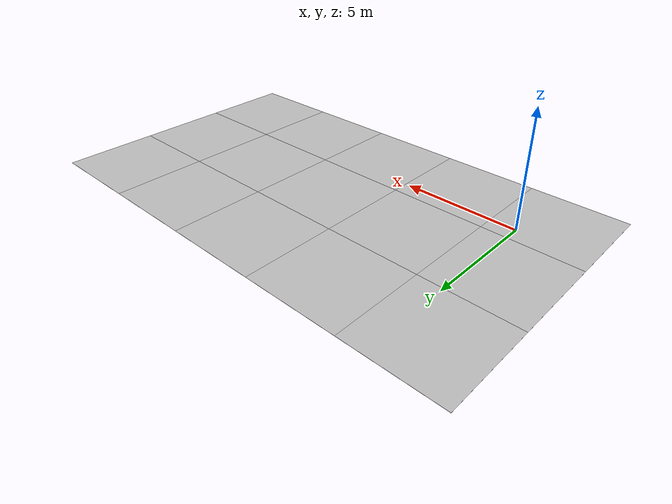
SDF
<sdf version='1.6'><world name='default'>
    <light name='sun_light' type='directional'>
      <pose frame=''>0 0 10 0 -0 0</pose>
      <diffuse>0.5 0.5 0.5 1</diffuse>
      <specular>0.1 0.1 0.1 1</specular>
      <direction>0.1 0.1 -0.9</direction>
      <attenuation>
        <range>20</range>
        <constant>0.5</constant>
        <linear>0.01</linear>
        <quadratic>0.001</quadratic>
      </attenuation>
      <cast_shadows>1</cast_shadows>
    </light>

    <model name='Tile/0-0'>
      <static>1</static>
      <link name='link'>
        <collision name='collision'>
          <geometry>
            <plane>
              <normal>0 0 1</normal>
              <size>4.096 4.096</size>
            </plane>
          </geometry>
          <surface>
            <friction>
              <ode>
                <mu>100</mu>
                <mu2>50</mu2>
              </ode>
              <torsional>
                <ode/>
              </torsional>
            </friction>
            <contact>
              <ode/>
            </contact>
            <bounce/>
          </surface>
          <max_contacts>10</max_contacts>
        </collision>
        <visual name='visual'>
          <cast_shadows>0</cast_shadows>
          <geometry>
            <plane>
              <normal>0 0 1</normal>
              <size>4.096 4.096</size>
            </plane>
          </geometry>
          <material>
            <script>
              <uri>file://materials/scripts</uri>
              <uri>file://materials/textures</uri>
              <name>Tile/2d6d550247164405bd7f7721bde8c66eb1b70c9c122a16d1426408409930bc02</name>
            </script>
          </material>
        </visual>
        <self_collide>0</self_collide>
        <enable_wind>0</enable_wind>
        <kinematic>0</kinematic>
      </link>
      <pose frame=''>-0.952 -1.3519999999999999 0 0 -0 0</pose>
    </model>

    <model name='Tile/0-1'>
      <static>1</static>
      <link name='link'>
        <collision name='collision'>
          <geometry>
            <plane>
              <normal>0 0 1</normal>
              <size>4.096 4.096</size>
            </plane>
          </geometry>
          <surface>
            <friction>
              <ode>
                <mu>100</mu>
                <mu2>50</mu2>
              </ode>
              <torsional>
                <ode/>
              </torsional>
            </friction>
            <contact>
              <ode/>
            </contact>
            <bounce/>
          </surface>
          <max_contacts>10</max_contacts>
        </collision>
        <visual name='visual'>
          <cast_shadows>0</cast_shadows>
          <geometry>
            <plane>
              <normal>0 0 1</normal>
              <size>4.096 4.096</size>
            </plane>
          </geometry>
          <material>
            <script>
              <uri>file://materials/scripts</uri>
              <uri>file://materials/textures</uri>
              <name>Tile/5eab350b8220ac9944dbdfa4ac3288c7c17e24c3bf5df0dfcf6173d64dae00a1</name>
            </script>
          </material>
        </visual>
        <self_collide>0</self_collide>
        <enable_wind>0</enable_wind>
        <kinematic>0</kinematic>
      </link>
      <pose frame=''>-0.952 2.744 0 0 -0 0</pose>
    </model>

    <model name='Tile/0-2'>
      <static>1</static>
      <link name='link'>
        <collision name='collision'>
          <geometry>
            <plane>
              <normal>0 0 1</normal>
              <size>4.096 4.096</size>
            </plane>
          </geometry>
          <surface>
            <friction>
              <ode>
                <mu>100</mu>
                <mu2>50</mu2>
              </ode>
              <torsional>
                <ode/>
              </torsional>
            </friction>
            <contact>
              <ode/>
            </contact>
            <bounce/>
          </surface>
          <max_contacts>10</max_contacts>
        </collision>
        <visual name='visual'>
          <cast_shadows>0</cast_shadows>
          <geometry>
            <plane>
              <normal>0 0 1</normal>
              <size>4.096 4.096</size>
            </plane>
          </geometry>
          <material>
            <script>
              <uri>file://materials/scripts</uri>
              <uri>file://materials/textures</uri>
              <name>Tile/5eab350b8220ac9944dbdfa4ac3288c7c17e24c3bf5df0dfcf6173d64dae00a1</name>
            </script>
          </material>
        </visual>
        <self_collide>0</self_collide>
        <enable_wind>0</enable_wind>
        <kinematic>0</kinematic>
      </link>
      <pose frame=''>-0.952 6.84 0 0 -0 0</pose>
    </model>

    <model name='Tile/1-0'>
      <static>1</static>
      <link name='link'>
        <collision name='collision'>
          <geometry>
            <plane>
              <normal>0 0 1</normal>
              <size>4.096 4.096</size>
            </plane>
          </geometry>
          <surface>
            <friction>
              <ode>
                <mu>100</mu>
                <mu2>50</mu2>
              </ode>
              <torsional>
                <ode/>
              </torsional>
            </friction>
            <contact>
              <ode/>
            </contact>
            <bounce/>
          </surface>
          <max_contacts>10</max_contacts>
        </collision>
        <visual name='visual'>
          <cast_shadows>0</cast_shadows>
          <geometry>
            <plane>
              <normal>0 0 1</normal>
              <size>4.096 4.096</size>
            </plane>
          </geometry>
          <material>
            <script>
              <uri>file://materials/scripts</uri>
              <uri>file://materials/textures</uri>
              <name>Tile/ae5cc26feb82b0066c12f65bf03c7ebf14f680dca05fb5ed5e37624fc9694613</name>
            </script>
          </material>
        </visual>
        <self_collide>0</self_collide>
        <enable_wind>0</enable_wind>
        <kinematic>0</kinematic>
      </link>
      <pose frame=''>3.144 -1.3519999999999999 0 0 -0 0</pose>
    </model>

    <model name='Tile/1-1'>
      <static>1</static>
      <link name='link'>
        <collision name='collision'>
          <geometry>
            <plane>
              <normal>0 0 1</normal>
              <size>4.096 4.096</size>
            </plane>
          </geometry>
          <surface>
            <friction>
              <ode>
                <mu>100</mu>
                <mu2>50</mu2>
              </ode>
              <torsional>
                <ode/>
              </torsional>
            </friction>
            <contact>
              <ode/>
            </contact>
            <bounce/>
          </surface>
          <max_contacts>10</max_contacts>
        </collision>
        <visual name='visual'>
          <cast_shadows>0</cast_shadows>
          <geometry>
            <plane>
              <normal>0 0 1</normal>
              <size>4.096 4.096</size>
            </plane>
          </geometry>
          <material>
            <script>
              <uri>file://materials/scripts</uri>
              <uri>file://materials/textures</uri>
              <name>Tile/d0aca1e80e68e90fa86395ae9c6534cb22ee474e5c0ccf47ac7becd7d4edf3e5</name>
            </script>
          </material>
        </visual>
        <self_collide>0</self_collide>
        <enable_wind>0</enable_wind>
        <kinematic>0</kinematic>
      </link>
      <pose frame=''>3.144 2.744 0 0 -0 0</pose>
    </model>

    <model name='Tile/1-2'>
      <static>1</static>
      <link name='link'>
        <collision name='collision'>
          <geometry>
            <plane>
              <normal>0 0 1</normal>
              <size>4.096 4.096</size>
            </plane>
          </geometry>
          <surface>
            <friction>
              <ode>
                <mu>100</mu>
                <mu2>50</mu2>
              </ode>
              <torsional>
                <ode/>
              </torsional>
            </friction>
            <contact>
              <ode/>
            </contact>
            <bounce/>
          </surface>
          <max_contacts>10</max_contacts>
        </collision>
        <visual name='visual'>
          <cast_shadows>0</cast_shadows>
          <geometry>
            <plane>
              <normal>0 0 1</normal>
              <size>4.096 4.096</size>
            </plane>
          </geometry>
          <material>
            <script>
              <uri>file://materials/scripts</uri>
              <uri>file://materials/textures</uri>
              <name>Tile/5eab350b8220ac9944dbdfa4ac3288c7c17e24c3bf5df0dfcf6173d64dae00a1</name>
            </script>
          </material>
        </visual>
        <self_collide>0</self_collide>
        <enable_wind>0</enable_wind>
        <kinematic>0</kinematic>
      </link>
      <pose frame=''>3.144 6.84 0 0 -0 0</pose>
    </model>

    <model name='Tile/2-0'>
      <static>1</static>
      <link name='link'>
        <collision name='collision'>
          <geometry>
            <plane>
              <normal>0 0 1</normal>
              <size>4.096 4.096</size>
            </plane>
          </geometry>
          <surface>
            <friction>
              <ode>
                <mu>100</mu>
                <mu2>50</mu2>
              </ode>
              <torsional>
                <ode/>
              </torsional>
            </friction>
            <contact>
              <ode/>
            </contact>
            <bounce/>
          </surface>
          <max_contacts>10</max_contacts>
        </collision>
        <visual name='visual'>
          <cast_shadows>0</cast_shadows>
          <geometry>
            <plane>
              <normal>0 0 1</normal>
              <size>4.096 4.096</size>
            </plane>
          </geometry>
          <material>
            <script>
              <uri>file://materials/scripts</uri>
              <uri>file://materials/textures</uri>
              <name>Tile/5eab350b8220ac9944dbdfa4ac3288c7c17e24c3bf5df0dfcf6173d64dae00a1</name>
            </script>
          </material>
        </visual>
        <self_collide>0</self_collide>
        <enable_wind>0</enable_wind>
        <kinematic>0</kinematic>
      </link>
      <pose frame=''>7.24 -1.3519999999999999 0 0 -0 0</pose>
    </model>

    <model name='Tile/2-1'>
      <static>1</static>
      <link name='link'>
        <collision name='collision'>
          <geometry>
            <plane>
              <normal>0 0 1</normal>
              <size>4.096 4.096</size>
            </plane>
          </geometry>
          <surface>
            <friction>
              <ode>
                <mu>100</mu>
                <mu2>50</mu2>
              </ode>
              <torsional>
                <ode/>
              </torsional>
            </friction>
            <contact>
              <ode/>
            </contact>
            <bounce/>
          </surface>
          <max_contacts>10</max_contacts>
        </collision>
        <visual name='visual'>
          <cast_shadows>0</cast_shadows>
          <geometry>
            <plane>
              <normal>0 0 1</normal>
              <size>4.096 4.096</size>
            </plane>
          </geometry>
          <material>
            <script>
              <uri>file://materials/scripts</uri>
              <uri>file://materials/textures</uri>
              <name>Tile/5db5945a4e283d52a1bf1335ce1c2483a49ade7b536f8ea77f42c53d4f118183</name>
            </script>
          </material>
        </visual>
        <self_collide>0</self_collide>
        <enable_wind>0</enable_wind>
        <kinematic>0</kinematic>
      </link>
      <pose frame=''>7.24 2.744 0 0 -0 0</pose>
    </model>

    <model name='Tile/2-2'>
      <static>1</static>
      <link name='link'>
        <collision name='collision'>
          <geometry>
            <plane>
              <normal>0 0 1</normal>
              <size>4.096 4.096</size>
            </plane>
          </geometry>
          <surface>
            <friction>
              <ode>
                <mu>100</mu>
                <mu2>50</mu2>
              </ode>
              <torsional>
                <ode/>
              </torsional>
            </friction>
            <contact>
              <ode/>
            </contact>
            <bounce/>
          </surface>
          <max_contacts>10</max_contacts>
        </collision>
        <visual name='visual'>
          <cast_shadows>0</cast_shadows>
          <geometry>
            <plane>
              <normal>0 0 1</normal>
              <size>4.096 4.096</size>
            </plane>
          </geometry>
          <material>
            <script>
              <uri>file://materials/scripts</uri>
              <uri>file://materials/textures</uri>
              <name>Tile/5eab350b8220ac9944dbdfa4ac3288c7c17e24c3bf5df0dfcf6173d64dae00a1</name>
            </script>
          </material>
        </visual>
        <self_collide>0</self_collide>
        <enable_wind>0</enable_wind>
        <kinematic>0</kinematic>
      </link>
      <pose frame=''>7.24 6.84 0 0 -0 0</pose>
    </model>

    <model name='Tile/3-0'>
      <static>1</static>
      <link name='link'>
        <collision name='collision'>
          <geometry>
            <plane>
              <normal>0 0 1</normal>
              <size>4.096 4.096</size>
            </plane>
          </geometry>
          <surface>
            <friction>
              <ode>
                <mu>100</mu>
                <mu2>50</mu2>
              </ode>
              <torsional>
                <ode/>
              </torsional>
            </friction>
            <contact>
              <ode/>
            </contact>
            <bounce/>
          </surface>
          <max_contacts>10</max_contacts>
        </collision>
        <visual name='visual'>
          <cast_shadows>0</cast_shadows>
          <geometry>
            <plane>
              <normal>0 0 1</normal>
              <size>4.096 4.096</size>
            </plane>
          </geometry>
          <material>
            <script>
              <uri>file://materials/scripts</uri>
              <uri>file://materials/textures</uri>
              <name>Tile/5eab350b8220ac9944dbdfa4ac3288c7c17e24c3bf5df0dfcf6173d64dae00a1</name>
            </script>
          </material>
        </visual>
        <self_collide>0</self_collide>
        <enable_wind>0</enable_wind>
        <kinematic>0</kinematic>
      </link>
      <pose frame=''>11.336 -1.3519999999999999 0 0 -0 0</pose>
    </model>

    <model name='Tile/3-1'>
      <static>1</static>
      <link name='link'>
        <collision name='collision'>
          <geometry>
            <plane>
              <normal>0 0 1</normal>
              <size>4.096 4.096</size>
            </plane>
          </geometry>
          <surface>
            <friction>
              <ode>
                <mu>100</mu>
                <mu2>50</mu2>
              </ode>
              <torsional>
                <ode/>
              </torsional>
            </friction>
            <contact>
              <ode/>
            </contact>
            <bounce/>
          </surface>
          <max_contacts>10</max_contacts>
        </collision>
        <visual name='visual'>
          <cast_shadows>0</cast_shadows>
          <geometry>
            <plane>
              <normal>0 0 1</normal>
              <size>4.096 4.096</size>
            </plane>
          </geometry>
          <material>
            <script>
              <uri>file://materials/scripts</uri>
              <uri>file://materials/textures</uri>
              <name>Tile/66f942b2898d39983f38945711961e612052e8fb176c9420b4ffa8cad71d0bb8</name>
            </script>
          </material>
        </visual>
        <self_collide>0</self_collide>
        <enable_wind>0</enable_wind>
        <kinematic>0</kinematic>
      </link>
      <pose frame=''>11.336 2.744 0 0 -0 0</pose>
    </model>

    <model name='Tile/3-2'>
      <static>1</static>
      <link name='link'>
        <collision name='collision'>
          <geometry>
            <plane>
              <normal>0 0 1</normal>
              <size>4.096 4.096</size>
            </plane>
          </geometry>
          <surface>
            <friction>
              <ode>
                <mu>100</mu>
                <mu2>50</mu2>
              </ode>
              <torsional>
                <ode/>
              </torsional>
            </friction>
            <contact>
              <ode/>
            </contact>
            <bounce/>
          </surface>
          <max_contacts>10</max_contacts>
        </collision>
        <visual name='visual'>
          <cast_shadows>0</cast_shadows>
          <geometry>
            <plane>
              <normal>0 0 1</normal>
              <size>4.096 4.096</size>
            </plane>
          </geometry>
          <material>
            <script>
              <uri>file://materials/scripts</uri>
              <uri>file://materials/textures</uri>
              <name>Tile/5eab350b8220ac9944dbdfa4ac3288c7c17e24c3bf5df0dfcf6173d64dae00a1</name>
            </script>
          </material>
        </visual>
        <self_collide>0</self_collide>
        <enable_wind>0</enable_wind>
        <kinematic>0</kinematic>
      </link>
      <pose frame=''>11.336 6.84 0 0 -0 0</pose>
    </model>

    <model name='Tile/4-0'>
      <static>1</static>
      <link name='link'>
        <collision name='collision'>
          <geometry>
            <plane>
              <normal>0 0 1</normal>
              <size>4.096 4.096</size>
            </plane>
          </geometry>
          <surface>
            <friction>
              <ode>
                <mu>100</mu>
                <mu2>50</mu2>
              </ode>
              <torsional>
                <ode/>
              </torsional>
            </friction>
            <contact>
              <ode/>
            </contact>
            <bounce/>
          </surface>
          <max_contacts>10</max_contacts>
        </collision>
        <visual name='visual'>
          <cast_shadows>0</cast_shadows>
          <geometry>
            <plane>
              <normal>0 0 1</normal>
              <size>4.096 4.096</size>
            </plane>
          </geometry>
          <material>
            <script>
              <uri>file://materials/scripts</uri>
              <uri>file://materials/textures</uri>
              <name>Tile/5eab350b8220ac9944dbdfa4ac3288c7c17e24c3bf5df0dfcf6173d64dae00a1</name>
            </script>
          </material>
        </visual>
        <self_collide>0</self_collide>
        <enable_wind>0</enable_wind>
        <kinematic>0</kinematic>
      </link>
      <pose frame=''>15.431999999999999 -1.3519999999999999 0 0 -0 0</pose>
    </model>

    <model name='Tile/4-1'>
      <static>1</static>
      <link name='link'>
        <collision name='collision'>
          <geometry>
            <plane>
              <normal>0 0 1</normal>
              <size>4.096 4.096</size>
            </plane>
          </geometry>
          <surface>
            <friction>
              <ode>
                <mu>100</mu>
                <mu2>50</mu2>
              </ode>
              <torsional>
                <ode/>
              </torsional>
            </friction>
            <contact>
              <ode/>
            </contact>
            <bounce/>
          </surface>
          <max_contacts>10</max_contacts>
        </collision>
        <visual name='visual'>
          <cast_shadows>0</cast_shadows>
          <geometry>
            <plane>
              <normal>0 0 1</normal>
              <size>4.096 4.096</size>
            </plane>
          </geometry>
          <material>
            <script>
              <uri>file://materials/scripts</uri>
              <uri>file://materials/textures</uri>
              <name>Tile/5eab350b8220ac9944dbdfa4ac3288c7c17e24c3bf5df0dfcf6173d64dae00a1</name>
            </script>
          </material>
        </visual>
        <self_collide>0</self_collide>
        <enable_wind>0</enable_wind>
        <kinematic>0</kinematic>
      </link>
      <pose frame=''>15.431999999999999 2.744 0 0 -0 0</pose>
    </model>

    <model name='Tile/4-2'>
      <static>1</static>
      <link name='link'>
        <collision name='collision'>
          <geometry>
            <plane>
              <normal>0 0 1</normal>
              <size>4.096 4.096</size>
            </plane>
          </geometry>
          <surface>
            <friction>
              <ode>
                <mu>100</mu>
                <mu2>50</mu2>
              </ode>
              <torsional>
                <ode/>
              </torsional>
            </friction>
            <contact>
              <ode/>
            </contact>
            <bounce/>
          </surface>
          <max_contacts>10</max_contacts>
        </collision>
        <visual name='visual'>
          <cast_shadows>0</cast_shadows>
          <geometry>
            <plane>
              <normal>0 0 1</normal>
              <size>4.096 4.096</size>
            </plane>
          </geometry>
          <material>
            <script>
              <uri>file://materials/scripts</uri>
              <uri>file://materials/textures</uri>
              <name>Tile/5eab350b8220ac9944dbdfa4ac3288c7c17e24c3bf5df0dfcf6173d64dae00a1</name>
            </script>
          </material>
        </visual>
        <self_collide>0</self_collide>
        <enable_wind>0</enable_wind>
        <kinematic>0</kinematic>
      </link>
      <pose frame=''>15.431999999999999 6.84 0 0 -0 0</pose>
    </model>
    </world></sdf>
